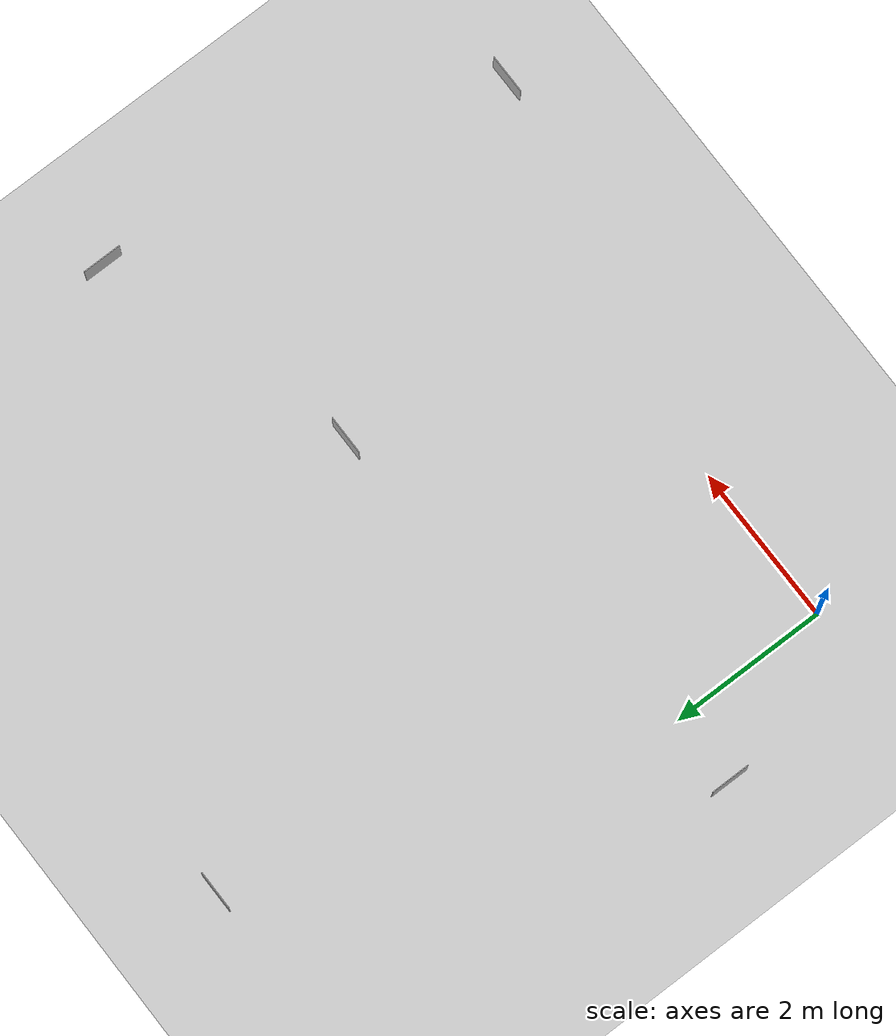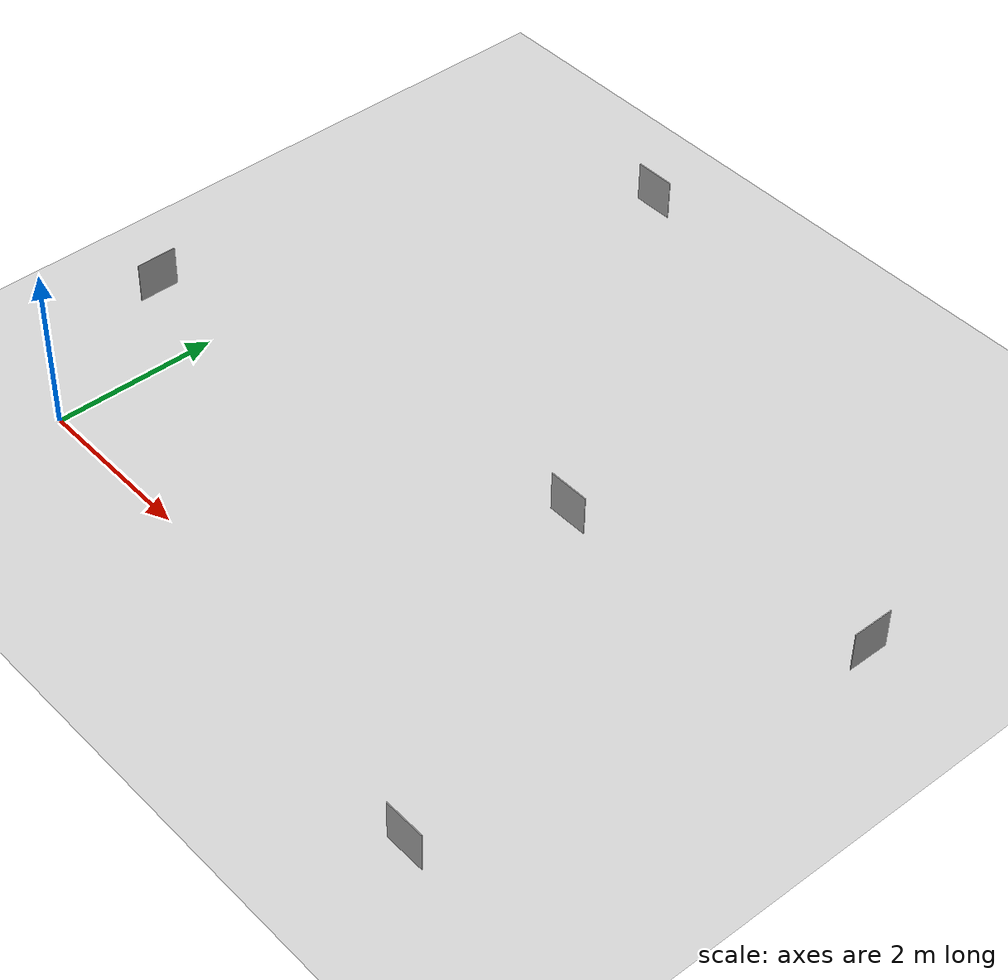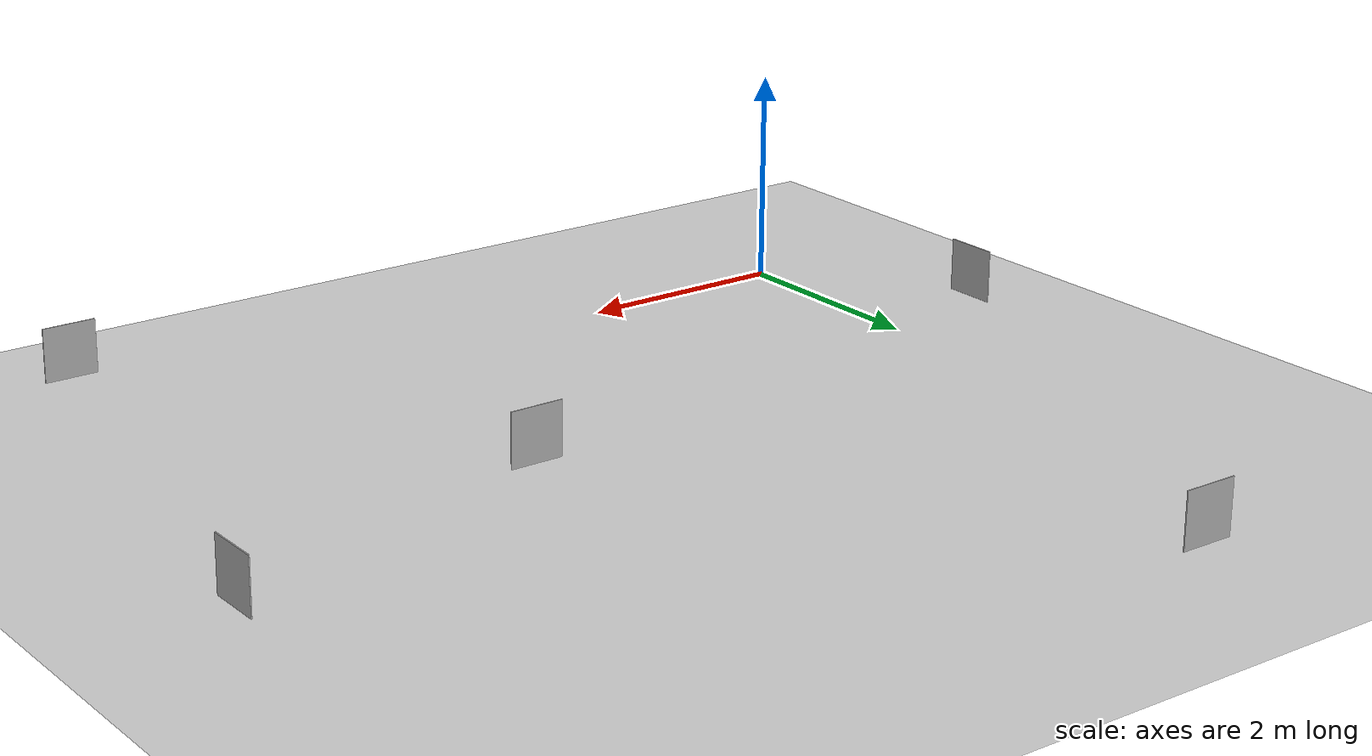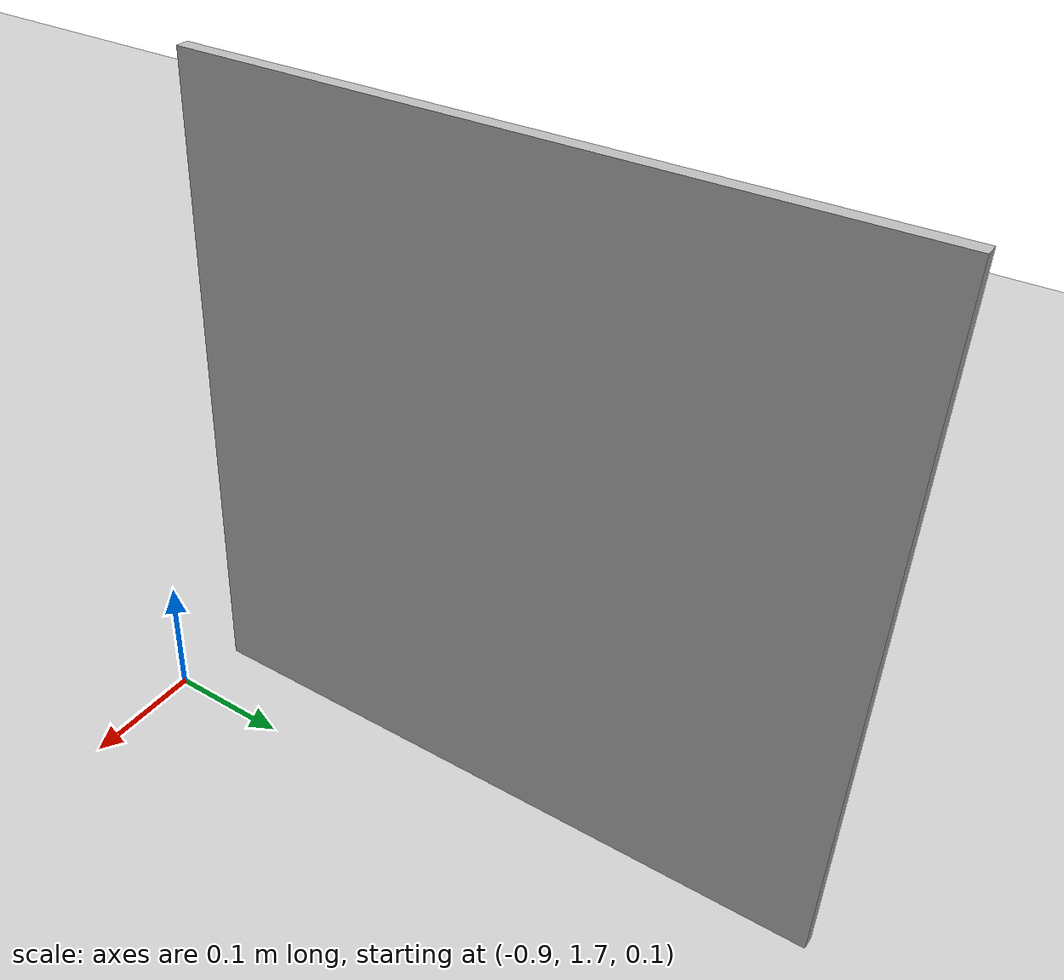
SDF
<sdf version="1.7">
 <world name="default">
  <light name="sun" type="directional">
   <pose>0 0 10 0 -0 0</pose>
   <diffuse>0.8 0.8 0.8 1</diffuse>
   <specular>0.2 0.2 0.2 1</specular>
   <attenuation>
    <range>1000</range>
    <constant>0.9</constant>
    <linear>0.01</linear>
    <quadratic>0.001</quadratic>
   </attenuation>
   <direction>-0.5 0.1 -0.9</direction>
   <spot><inner_angle>0</inner_angle><outer_angle>0</outer_angle><falloff>0</falloff></spot>
  </light>
  <model name="ground_plane">
   <static>1</static>
   <link name="link">
    <collision name="collision">
     <geometry><plane><normal>0 0 1</normal><size>100 100</size></plane></geometry>
     <surface>
      <contact><collide_bitmask>65535</collide_bitmask></contact>
      <friction><ode><mu>100</mu><mu2>50</mu2></ode></friction>
     </surface>
    </collision>
    <visual name="visual">
     <cast_shadows>0</cast_shadows>
     <geometry><plane><normal>0 0 1</normal><size>100 100</size></plane></geometry>
     <material>
      <script><uri>file://media/materials/scripts/gazebo.material</uri><name>Gazebo/Grey</name></script>
     </material>
    </visual>
   </link>
  </model>
  <gravity>0 0 -9.8</gravity>
  <magnetic_field>6e-06 2.3e-05 -4.2e-05</magnetic_field>
  <atmosphere type="adiabatic"/>
  <physics type="ode">
   <max_step_size>0.001</max_step_size>
   <real_time_factor>1</real_time_factor>
   <real_time_update_rate>1000</real_time_update_rate>
  </physics>
  <scene><ambient>0.4 0.4 0.4 1</ambient><background>0.7 0.7 0.7 1</background><shadows>1</shadows></scene>
  <audio><device>default</device></audio>
  <spherical_coordinates>
   <surface_model>EARTH_WGS84</surface_model>
   <latitude_deg>0</latitude_deg>
   <longitude_deg>0</longitude_deg>
   <elevation>0</elevation>
   <heading_deg>0</heading_deg>
  </spherical_coordinates>
  <model name="Apriltag36_11_00000_0">
   <link name="main">
    <visual name="main_Visual">
     <pose>0 0 0 0 -0 1.5708</pose>
     <geometry><box><size>0.5 0.5 0.01</size></box></geometry>
     <material>
      <script>
       <uri>model://Apriltag36_11_00000/materials/scripts</uri>
       <uri>model://Apriltag36_11_00000/materials/textures</uri>
       <name>Apriltag36_11_00000</name>
      </script>
     </material>
    </visual>
   </link>
   <static>1</static>
   <pose>4.8 3.04 0.4 1.5708 -0 0</pose>
  </model>
  <model name="Apriltag36_11_00001">
   <link name="main">
    <pose>0 0 0 0 -0 1.5708</pose>
    <visual name="main_Visual">
     <geometry><box><size>0.5 0.5 0.01</size></box></geometry>
     <material>
      <script>
       <uri>model://Apriltag36_11_00001/materials/scripts</uri>
       <uri>model://Apriltag36_11_00001/materials/textures</uri>
       <name>Apriltag36_11_00001</name>
      </script>
     </material>
    </visual>
   </link>
   <static>1</static>
   <pose>7 -0.96 0.4 1.5708 -0 3.14159</pose>
  </model>
  <model name="Apriltag36_11_00002">
   <link name="main">
    <pose>0 0 0 0 -0 1.5708</pose>
    <visual name="main_Visual">
     <geometry><box><size>0.5 0.5 0.01</size></box></geometry>
     <material>
      <script>
       <uri>model://Apriltag36_11_00002/materials/scripts</uri>
       <uri>model://Apriltag36_11_00002/materials/textures</uri>
       <name>Apriltag36_11_00002</name>
      </script>
     </material>
    </visual>
   </link>
   <static>1</static>
   <pose>-0.92 2 0.4 1.5708 -0 1.5708</pose>
  </model>
  <model name="Apriltag36_11_00003">
   <link name="main">
    <pose>0 0 0 0 -0 1.5708</pose>
    <visual name="main_Visual">
     <geometry><box><size>0.5 0.5 0.01</size></box></geometry>
     <material>
      <script>
       <uri>model://Apriltag36_11_00003/materials/scripts</uri>
       <uri>model://Apriltag36_11_00003/materials/textures</uri>
       <name>Apriltag36_11_00003</name>
      </script>
     </material>
    </visual>
   </link>
   <static>1</static>
   <pose>8.1 4 0.4 1.5708 0 -1.5708</pose>
  </model>
  <model name="Apriltag36_11_00004">
   <link name="main">
    <pose>0 0 0 0 -0 1.5708</pose>
    <visual name="main_Visual">
     <geometry><box><size>0.5 0.5 0.01</size></box></geometry>
     <material>
      <script>
       <uri>model://Apriltag36_11_00004/materials/scripts</uri>
       <uri>model://Apriltag36_11_00004/materials/textures</uri>
       <name>Apriltag36_11_00004</name>
      </script>
     </material>
    </visual>
   </link>
   <static>1</static>
   <pose>1.6 7.32 0.4 1.5708 -0 0</pose>
  </model>
 </world>
</sdf>
